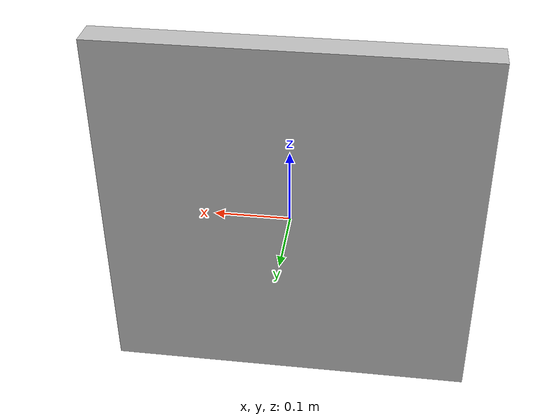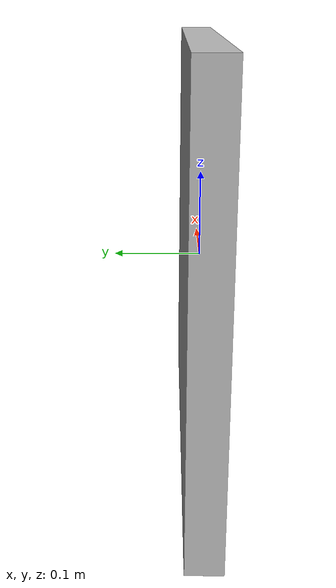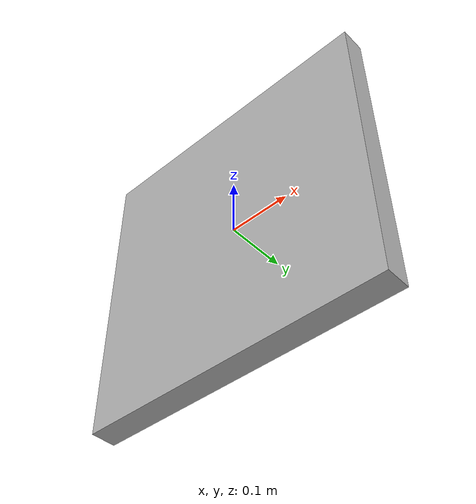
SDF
<?xml version='1.0'?>
<sdf version='1.4'>
  <model name="Checkerboard">
      <pose>0 0 0. 0 0 0</pose>
      <static>true</static>
      <link name="body">
        <visual name="visual">
			<pose>0 0 0 0 0 0</pose>
			  <geometry>
				<mesh><uri>model://chess_plane/meshes/chess_plane.dae</uri></mesh>
			  </geometry>
		</visual>
		  <collision name="collision">
			<pose>0 0 0  0 0 0</pose>
			  <geometry>
        <box>
          <size>0.25 0.25 0.05</size>
        </box>
			  </geometry>
		  </collision>
      </link>
    </model>
</sdf>
